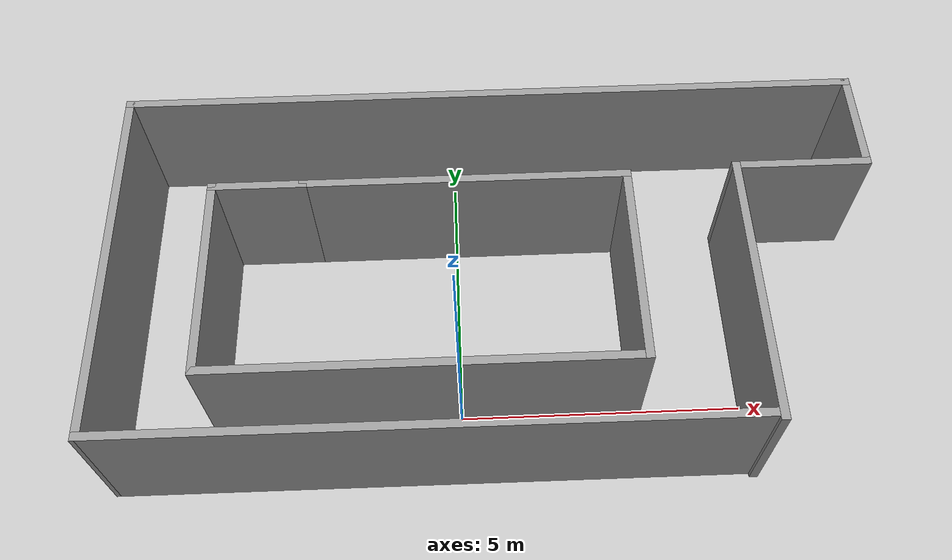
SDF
<?xml version='1.0'?>
<sdf version='1.6'>
  <model name='corridors2'>
    <pose frame=''>0.724879 2.12 0 0 -0 0</pose>
    <link name='Wall_0'>
      <collision name='Wall_0_Collision'>
        <geometry>
          <box>
            <size>11.0495 0.15 2.5</size>
          </box>
        </geometry>
        <pose frame=''>0 0 1.25 0 -0 0</pose>
      </collision>
      <visual name='Wall_0_Visual'>
        <pose frame=''>0 0 1.25 0 -0 0</pose>
        <geometry>
          <box>
            <size>11.0495 0.15 2.5</size>
          </box>
        </geometry>
        <material>
          <script>
            <uri>file://media/materials/scripts/gazebo.material</uri>
            <name>Gazebo/Grey</name>
          </script>
          <ambient>1 1 1 1</ambient>
        </material>
        <meta>
          <layer>0</layer>
        </meta>
      </visual>
      <pose frame=''>-1.22518 -3.26749 0 0 -0 3.13838</pose>
    </link>
    <link name='Wall_1'>
      <collision name='Wall_1_Collision'>
        <geometry>
          <box>
            <size>6.75 0.15 2.5</size>
          </box>
        </geometry>
        <pose frame=''>0 0 1.25 0 -0 0</pose>
      </collision>
      <visual name='Wall_1_Visual'>
        <pose frame=''>0 0 1.25 0 -0 0</pose>
        <geometry>
          <box>
            <size>6.75 0.15 2.5</size>
          </box>
        </geometry>
        <material>
          <script>
            <uri>file://media/materials/scripts/gazebo.material</uri>
            <name>Gazebo/Grey</name>
          </script>
          <ambient>1 1 1 1</ambient>
        </material>
        <meta>
          <layer>0</layer>
        </meta>
      </visual>
      <pose frame=''>-6.67488 0.05 0 0 -0 1.5708</pose>
    </link>
    <link name='Wall_10'>
      <collision name='Wall_10_Collision'>
        <geometry>
          <box>
            <size>3.75 0.15 2.5</size>
          </box>
        </geometry>
        <pose frame=''>0 0 1.25 0 -0 0</pose>
      </collision>
      <visual name='Wall_10_Visual'>
        <pose frame=''>0 0 1.25 0 -0 0</pose>
        <geometry>
          <box>
            <size>3.75 0.15 2.5</size>
          </box>
        </geometry>
        <material>
          <script>
            <uri>file://media/materials/scripts/gazebo.material</uri>
            <name>Gazebo/Grey</name>
          </script>
          <ambient>1 1 1 1</ambient>
        </material>
        <meta>
          <layer>0</layer>
        </meta>
      </visual>
      <pose frame=''>2.34983 -0.397477 0 0 -0 1.5708</pose>
    </link>
    <link name='Wall_11'>
      <collision name='Wall_11_Collision'>
        <geometry>
          <box>
            <size>5.9 0.15 2.5</size>
          </box>
        </geometry>
        <pose frame=''>0 0 1.25 0 -0 0</pose>
      </collision>
      <visual name='Wall_11_Visual'>
        <pose frame=''>0 0 1.25 0 -0 0</pose>
        <geometry>
          <box>
            <size>5.9 0.15 2.5</size>
          </box>
        </geometry>
        <material>
          <script>
            <uri>file://media/materials/scripts/gazebo.material</uri>
            <name>Gazebo/Grey</name>
          </script>
          <ambient>1 1 1 1</ambient>
        </material>
        <meta>
          <layer>0</layer>
        </meta>
      </visual>
      <pose frame=''>-0.525171 1.40252 0 0 -0 3.14159</pose>
    </link>
    <link name='Wall_2'>
      <collision name='Wall_2_Collision'>
        <geometry>
          <box>
            <size>13.5 0.15 2.5</size>
          </box>
        </geometry>
        <pose frame=''>0 0 1.25 0 -0 0</pose>
      </collision>
      <visual name='Wall_2_Visual'>
        <pose frame=''>0 0 1.25 0 -0 0</pose>
        <geometry>
          <box>
            <size>13.5 0.15 2.5</size>
          </box>
        </geometry>
        <material>
          <script>
            <uri>file://media/materials/scripts/gazebo.material</uri>
            <name>Gazebo/Grey</name>
          </script>
          <ambient>1 1 1 1</ambient>
        </material>
        <meta>
          <layer>0</layer>
        </meta>
      </visual>
      <pose frame=''>0.000121 3.35 0 0 -0 0</pose>
    </link>
    <link name='Wall_3'>
      <collision name='Wall_3_Collision'>
        <geometry>
          <box>
            <size>2 0.15 2.5</size>
          </box>
        </geometry>
        <pose frame=''>0 0 1.25 0 -0 0</pose>
      </collision>
      <visual name='Wall_3_Visual'>
        <pose frame=''>0 0 1.25 0 -0 0</pose>
        <geometry>
          <box>
            <size>2 0.15 2.5</size>
          </box>
        </geometry>
        <material>
          <script>
            <uri>file://media/materials/scripts/gazebo.material</uri>
            <name>Gazebo/Grey</name>
          </script>
          <ambient>1 1 1 1</ambient>
        </material>
        <meta>
          <layer>0</layer>
        </meta>
      </visual>
      <pose frame=''>6.67512 2.425 0 0 -0 -1.5708</pose>
    </link>
    <link name='Wall_4'>
      <collision name='Wall_4_Collision'>
        <geometry>
          <box>
            <size>2.5 0.15 2.5</size>
          </box>
        </geometry>
        <pose frame=''>0 0 1.25 0 -0 0</pose>
      </collision>
      <visual name='Wall_4_Visual'>
        <pose frame=''>0 0 1.25 0 -0 0</pose>
        <geometry>
          <box>
            <size>2.5 0.15 2.5</size>
          </box>
        </geometry>
        <material>
          <script>
            <uri>file://media/materials/scripts/gazebo.material</uri>
            <name>Gazebo/Grey</name>
          </script>
          <ambient>1 1 1 1</ambient>
        </material>
        <meta>
          <layer>0</layer>
        </meta>
      </visual>
      <pose frame=''>5.50012 1.5 0 0 -0 3.14159</pose>
    </link>
    <link name='Wall_5'>
      <collision name='Wall_5_Collision'>
        <geometry>
          <box>
            <size>5 0.15 2.5</size>
          </box>
        </geometry>
        <pose frame=''>0 0 1.25 0 -0 0</pose>
      </collision>
      <visual name='Wall_5_Visual'>
        <pose frame=''>0 0 1.25 0 -0 0</pose>
        <geometry>
          <box>
            <size>5 0.15 2.5</size>
          </box>
        </geometry>
        <material>
          <script>
            <uri>file://media/materials/scripts/gazebo.material</uri>
            <name>Gazebo/Grey</name>
          </script>
          <ambient>1 1 1 1</ambient>
        </material>
        <meta>
          <layer>0</layer>
        </meta>
      </visual>
      <pose frame=''>4.32512 -0.925 0 0 -0 -1.5708</pose>
    </link>
    <link name='Wall_7'>
      <collision name='Wall_7_Collision'>
        <geometry>
          <box>
            <size>1.75 0.15 2.5</size>
          </box>
        </geometry>
        <pose frame=''>0 0 1.25 0 -0 0</pose>
      </collision>
      <visual name='Wall_7_Visual'>
        <pose frame=''>0 0 1.25 0 -0 0</pose>
        <geometry>
          <box>
            <size>1.75 0.15 2.5</size>
          </box>
        </geometry>
        <material>
          <script>
            <uri>file://media/materials/scripts/gazebo.material</uri>
            <name>Gazebo/Grey</name>
          </script>
          <ambient>1 1 1 1</ambient>
        </material>
        <meta>
          <layer>0</layer>
        </meta>
      </visual>
      <pose frame=''>-4.20017 1.40252 0 0 -0 3.14159</pose>
    </link>
    <link name='Wall_8'>
      <collision name='Wall_8_Collision'>
        <geometry>
          <box>
            <size>3.75 0.15 2.5</size>
          </box>
        </geometry>
        <pose frame=''>0 0 1.25 0 -0 0</pose>
      </collision>
      <visual name='Wall_8_Visual'>
        <pose frame=''>0 0 1.25 0 -0 0</pose>
        <geometry>
          <box>
            <size>3.75 0.15 2.5</size>
          </box>
        </geometry>
        <material>
          <script>
            <uri>file://media/materials/scripts/gazebo.material</uri>
            <name>Gazebo/Grey</name>
          </script>
          <ambient>1 1 1 1</ambient>
        </material>
        <meta>
          <layer>0</layer>
        </meta>
      </visual>
      <pose frame=''>-5.00017 -0.397477 0 0 -0 -1.5708</pose>
    </link>
    <link name='Wall_9'>
      <collision name='Wall_9_Collision'>
        <geometry>
          <box>
            <size>7.5 0.15 2.5</size>
          </box>
        </geometry>
        <pose frame=''>0 0 1.25 0 -0 0</pose>
      </collision>
      <visual name='Wall_9_Visual'>
        <pose frame=''>0 0 1.25 0 -0 0</pose>
        <geometry>
          <box>
            <size>7.5 0.15 2.5</size>
          </box>
        </geometry>
        <material>
          <script>
            <uri>file://media/materials/scripts/gazebo.material</uri>
            <name>Gazebo/Grey</name>
          </script>
          <ambient>1 1 1 1</ambient>
        </material>
        <meta>
          <layer>0</layer>
        </meta>
      </visual>
      <pose frame=''>-1.32517 -2.19748 0 0 -0 0</pose>
    </link>
    <static>1</static>
  </model>
</sdf>
